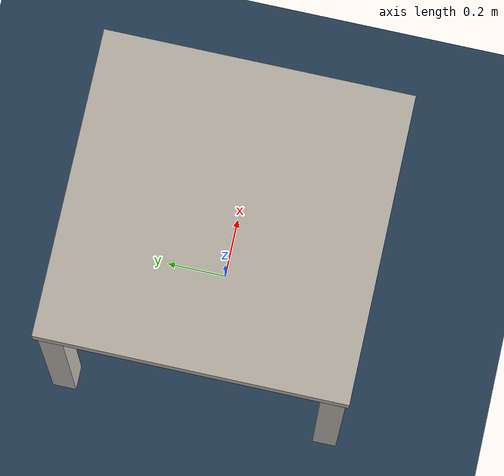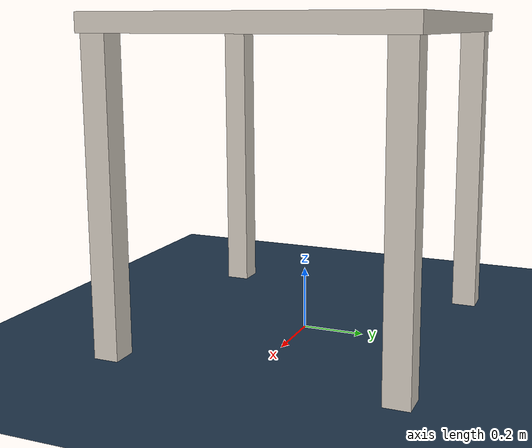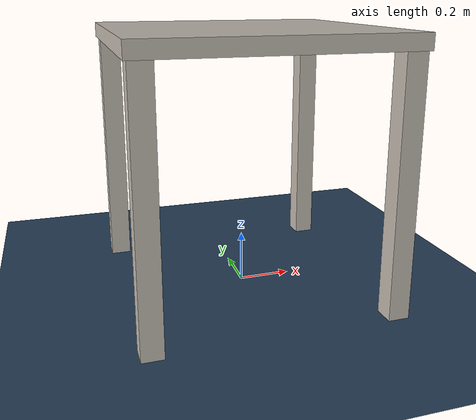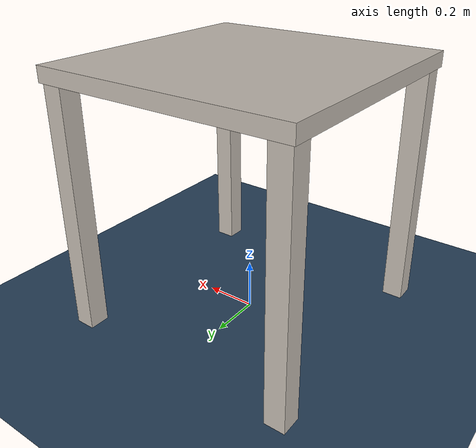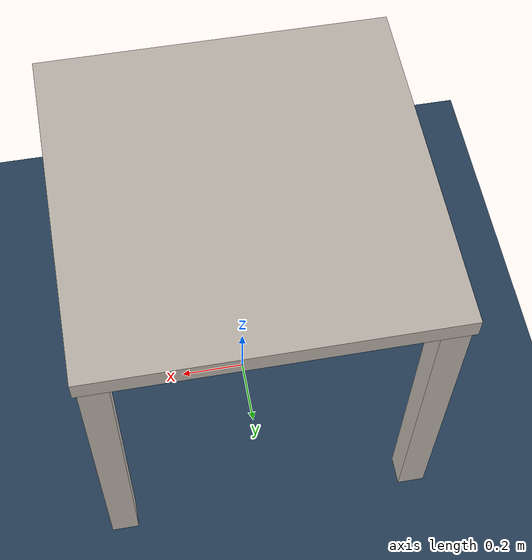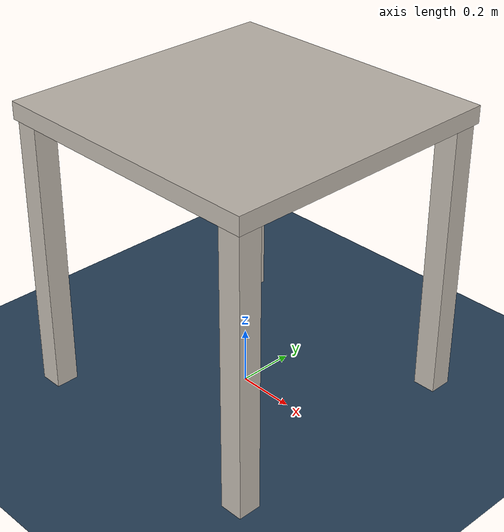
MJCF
<mujoco model="table">
    <compiler angle="radian"
              inertiafromgeom="false"/>
    <option timestep="2e-3"
            iterations="10"
            tolerance="1e-10"
            impratio="20"/>
    <size njmax="600" nconmax="150" nstack="300000"/>

    <visual>
        <map fogstart="3" fogend="5" znear="0.05"/>
        <quality shadowsize="2048"/>
        <scale framelength="0.1"
               framewidth="0.005"
               contactwidth="0.1"
               contactheight="0.005"
               forcewidth="0.01"
               />
        <global offwidth="1280" offheight="720"/> <!-- for larger image rendering -->
    </visual>

    <asset>
        <texture name="./textures/floor_tex"   type="2d"        builtin="checker" rgb1=".2 .3 .4" rgb2=".1 .2 .3" width="100" height="100" />
        <texture name="metal"        type="cube"     file="textures/metal2.png"/>
        <!--Materials-->
        <material name='floor_mat'      texture="./textures/floor_tex"  shininess="0.8" texrepeat="10 10" specular="0.7"  reflectance="0.5" />
        <material name="bench_mat"      texture="metal"   shininess="0.1" specular="0.5" reflectance="0.2"/>
    </asset>

    <worldbody>
        <body name="table_link" pos="0 0 0">
            <!--table top:-->
            <geom size=".5 .5 .03" pos ="0 0 1.0" type="box" material="bench_mat"/>
            <!--table legs:-->
            <geom size=".04 .04 0.5" pos =".45 .45 0.5" type="box" material="bench_mat"/>
            <geom size=".04 .04 0.5" pos ="-.45 .45 0.5" type="box" material="bench_mat"/>
            <geom size=".04 .04 0.5" pos =".45 -.45 0.5" type="box" material="bench_mat"/>
            <geom size=".04 .04 0.5" pos ="-.45 -.45 0.5" type="box" material="bench_mat"/>
            <inertial pos="0 0 0" mass="1000" diaginertia="0 0 0" />
        </body>

        <!--Lighting parameters-->
        <light name="light3" mode="targetbody" target="table_link" directional="true" pos="1 -1 3" />

        <!--Camera parameters-->
        <camera name="my_camera" pos="2 -2 3" xyaxes="0.658 0.728 0 -0.487 0.458 0.743"/>

        <!--Floor Property-->
        <geom name='floor' material="floor_mat" pos='0 0 0' size='2.5 2.5 0.1'  type='plane' />

    </worldbody>

</mujoco>
